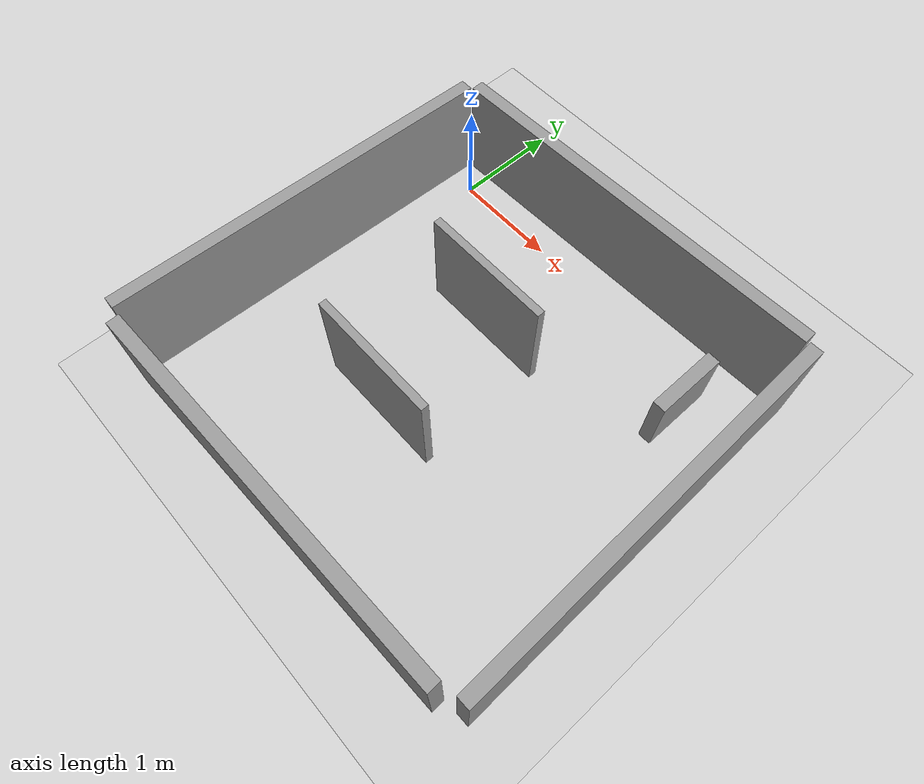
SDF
<sdf version="1.6">
 <world name="default">
  <light name="sun" type="directional">
   <pose>0 0 10 0 -0 0</pose>
   <diffuse>0.8 0.8 0.8 1</diffuse>
   <specular>0.2 0.2 0.2 1</specular>
   <attenuation>
    <range>1000</range>
    <constant>0.9</constant>
    <linear>0.01</linear>
    <quadratic>0.001</quadratic>
   </attenuation>
   <direction>-0.5 0.1 -0.9</direction>
  </light>
  <model name="ground_plane">
   <static>1</static>
   <link name="link">
    <collision name="collision">
     <geometry><plane><normal>0 0 1</normal><size>100 100</size></plane></geometry>
     <surface>
      <contact><collide_bitmask>65535</collide_bitmask></contact>
      <friction><ode><mu>100</mu><mu2>50</mu2></ode></friction>
     </surface>
    </collision>
    <visual name="visual">
     <cast_shadows>0</cast_shadows>
     <geometry><plane><normal>0 0 1</normal><size>100 100</size></plane></geometry>
     <material>
      <script><uri>file://media/materials/scripts/gazebo.material</uri><name>Gazebo/Grey</name></script>
     </material>
    </visual>
   </link>
  </model>
  <gravity>0 0 -9.8</gravity>
  <magnetic_field>6e-06 2.3e-05 -4.2e-05</magnetic_field>
  <atmosphere type="adiabatic"/>
  <physics name="default_physics" default="0" type="ode">
   <max_step_size>0.001</max_step_size>
   <real_time_factor>1</real_time_factor>
   <real_time_update_rate>1000</real_time_update_rate>
  </physics>
  <scene><ambient>0.4 0.4 0.4 1</ambient><background>0.7 0.7 0.7 1</background><shadows>1</shadows></scene>
  <audio><device>default</device></audio>
  <spherical_coordinates>
   <surface_model>EARTH_WGS84</surface_model>
   <latitude_deg>0</latitude_deg>
   <longitude_deg>0</longitude_deg>
   <elevation>0</elevation>
   <heading_deg>0</heading_deg>
  </spherical_coordinates>
  <model name="unit_box">
   <pose>-0.359924 -1.58893 0.499538 7e-06 -0.000255 -1.59856</pose>
   <link name="link">
    <inertial>
     <mass>1</mass>
     <inertia>
      <ixx>0.166667</ixx>
      <ixy>0</ixy>
      <ixz>0</ixz>
      <iyy>0.166667</iyy>
      <iyz>0</iyz>
      <izz>0.166667</izz>
     </inertia>
    </inertial>
    <collision name="collision"><geometry><box><size>3.62679 0.117845 1</size></box></geometry></collision>
    <visual name="visual">
     <geometry><box><size>3.62679 0.117845 1</size></box></geometry>
     <material>
      <script><name>Gazebo/Grey</name><uri>file://media/materials/scripts/gazebo.material</uri></script>
     </material>
    </visual>
   </link>
  </model>
  <model name="unit_box_clone">
   <pose>3.5068 -1.46813 0.499538 7e-06 0.000255 -1.55009</pose>
   <link name="link">
    <inertial>
     <mass>1</mass>
     <inertia>
      <ixx>0.166667</ixx>
      <ixy>0</ixy>
      <ixz>0</ixz>
      <iyy>0.166667</iyy>
      <iyz>0</iyz>
      <izz>0.166667</izz>
     </inertia>
    </inertial>
    <collision name="collision"><geometry><box><size>3.62679 0.117845 1</size></box></geometry></collision>
    <visual name="visual">
     <geometry><box><size>3.62679 0.117845 1</size></box></geometry>
     <material>
      <script><name>Gazebo/Grey</name><uri>file://media/materials/scripts/gazebo.material</uri></script>
     </material>
    </visual>
   </link>
  </model>
  <model name="unit_box_clone_0">
   <pose>1.54672 -3.40087 0.499538 7e-06 0.000255 0.02805</pose>
   <link name="link">
    <inertial>
     <mass>1</mass>
     <inertia>
      <ixx>0.166667</ixx>
      <ixy>0</ixy>
      <ixz>0</ixz>
      <iyy>0.166667</iyy>
      <iyz>0</iyz>
      <izz>0.166667</izz>
     </inertia>
    </inertial>
    <collision name="collision"><geometry><box><size>3.62679 0.117845 1</size></box></geometry></collision>
    <visual name="visual">
     <geometry><box><size>3.62679 0.117845 1</size></box></geometry>
     <material>
      <script><name>Gazebo/Grey</name><uri>file://media/materials/scripts/gazebo.material</uri></script>
     </material>
    </visual>
   </link>
  </model>
  <model name="unit_box_clone_0_clone">
   <pose>1.57324 0.333825 0.499538 -7e-06 -0.000255 0.024084</pose>
   <link name="link">
    <inertial>
     <mass>1</mass>
     <inertia>
      <ixx>0.166667</ixx>
      <ixy>0</ixy>
      <ixz>0</ixz>
      <iyy>0.166667</iyy>
      <iyz>0</iyz>
      <izz>0.166667</izz>
     </inertia>
    </inertial>
    <collision name="collision"><geometry><box><size>3.62679 0.117845 1</size></box></geometry></collision>
    <visual name="visual">
     <geometry><box><size>3.62679 0.117845 1</size></box></geometry>
     <material>
      <script><name>Gazebo/Grey</name><uri>file://media/materials/scripts/gazebo.material</uri></script>
     </material>
    </visual>
   </link>
  </model>
  <model name="unit_box_0_clone">
   <pose>1.28439 -2.16502 0.5 3e-06 0 0.000207</pose>
   <link name="link">
    <inertial>
     <mass>1</mass>
     <inertia>
      <ixx>0.166667</ixx>
      <ixy>0</ixy>
      <ixz>0</ixz>
      <iyy>0.166667</iyy>
      <iyz>0</iyz>
      <izz>0.166667</izz>
     </inertia>
    </inertial>
    <collision name="collision"><geometry><box><size>1.21612 0.072015 1</size></box></geometry></collision>
    <visual name="visual">
     <geometry><box><size>1.21612 0.072015 1</size></box></geometry>
     <material>
      <script><name>Gazebo/Grey</name><uri>file://media/materials/scripts/gazebo.material</uri></script>
     </material>
    </visual>
   </link>
  </model>
  <model name="unit_box_0_clone_0">
   <pose>1.27725 -0.98518 0.5 -8e-06 -0 0.000235</pose>
   <link name="link">
    <inertial>
     <mass>1</mass>
     <inertia>
      <ixx>0.166667</ixx>
      <ixy>0</ixy>
      <ixz>0</ixz>
      <iyy>0.166667</iyy>
      <iyz>0</iyz>
      <izz>0.166667</izz>
     </inertia>
    </inertial>
    <collision name="collision"><geometry><box><size>1.21612 0.072015 1</size></box></geometry></collision>
    <visual name="visual">
     <geometry><box><size>1.21612 0.072015 1</size></box></geometry>
     <material>
      <script><name>Gazebo/Grey</name><uri>file://media/materials/scripts/gazebo.material</uri></script>
     </material>
    </visual>
   </link>
  </model>
  <model name="unit_box_0">
   <pose>2.93907 -0.380373 0.307278 -5e-06 -0 6.9e-05</pose>
   <link name="link">
    <inertial>
     <mass>1</mass>
     <inertia>
      <ixx>0.166667</ixx>
      <ixy>0</ixy>
      <ixz>0</ixz>
      <iyy>0.166667</iyy>
      <iyz>0</iyz>
      <izz>0.166667</izz>
     </inertia>
    </inertial>
    <collision name="collision"><geometry><box><size>0.11816 0.655844 0.614559</size></box></geometry></collision>
    <visual name="visual">
     <geometry><box><size>0.11816 0.655844 0.614559</size></box></geometry>
     <material>
      <script><name>Gazebo/Grey</name><uri>file://media/materials/scripts/gazebo.material</uri></script>
     </material>
    </visual>
   </link>
  </model>
 </world>
</sdf>
